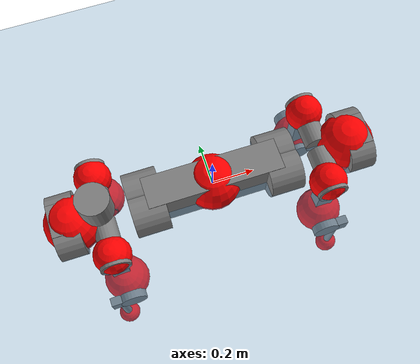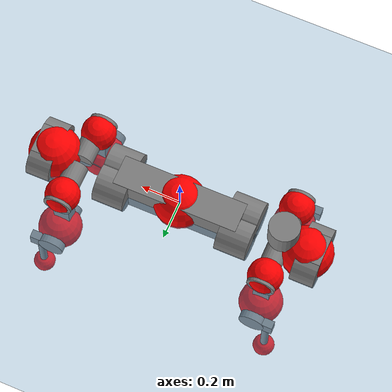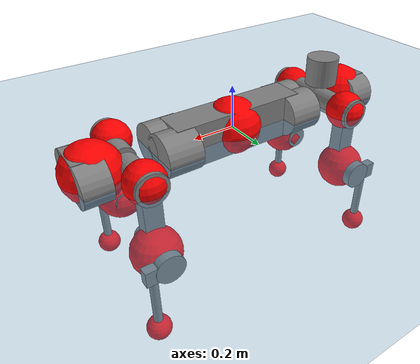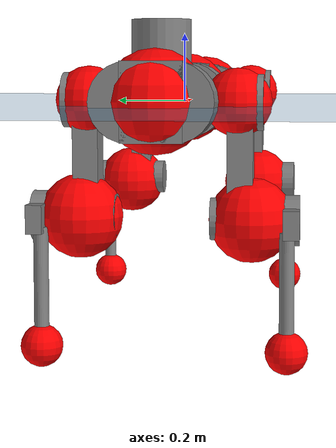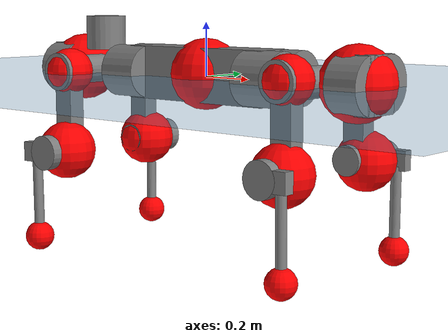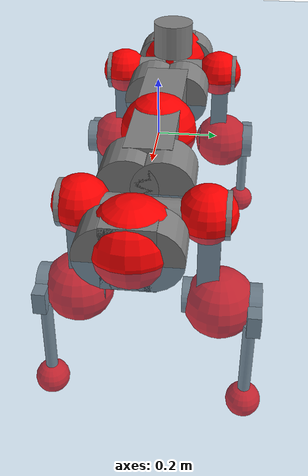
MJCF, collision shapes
<mujoco model="anymal_c">
  <compiler angle="radian" assetdir="assets" balanceinertia="true" inertiafromgeom="false"/>

  <option timestep="0.005" density="1.2" viscosity="2e-05"/>

  <size nkey="1"/>

  <visual>
    <quality shadowsize="8192"/>
    <map shadowclip="0.5"/>
  </visual>

  <default>
    <default class="/">
      <material specular="0" shininess="0.25"/>
      <geom contype="0" conaffinity="0" group="1" solref="-1000 -80"/>
      <site size="0.01 0.005 0.005" group="5"/>
      <general forcelimited="true" forcerange="-80 80" biastype="affine" gainprm="80" biasprm="0 -80 -2"/>
      <default class="anymal_c">
        <joint armature="0.01" damping="0.01" frictionloss="0.1"/>
        <default class="visual">
          <geom type="mesh" group="2"/>
          <default class="visual_zflip"/>
        </default>
        <default class="collision">
          <geom type="cylinder" group="3"/>
          <default class="foot">
            <geom size="0.03 0 0" type="sphere" condim="6" priority="1" friction="0.8 0.02 0.01" solimp="0.015 1 0.03"/>
          </default>
        </default>
      </default>
      <default class="reward_collision_sphere">
        <geom group="5" rgba="1 0 0 1"/>
      </default>
    </default>
  </default>

  <asset>
    <texture type="skybox" colorspace="auto" name="//unnamed_texture_0" builtin="gradient" rgb1="0.95 0.95 0.95" rgb2="0.95 0.95 0.95" width="100" height="600"/>
    <texture type="2d" colorspace="auto" name="texplane" builtin="checker" rgb1="0.345 0.575 0.748" rgb2="0.345 0.575 0.748" markrgb="1 1 1" width="512" height="512"/>
    <texture type="2d" colorspace="linear" name="base" file="base.png"/>
    <texture type="2d" colorspace="linear" name="top_shell" file="top_shell.png"/>
    <texture type="2d" colorspace="linear" name="bottom_shell" file="bottom_shell.png"/>
    <texture type="2d" colorspace="linear" name="remote" file="remote.png"/>
    <texture type="2d" colorspace="linear" name="hatch" file="hatch.png"/>
    <texture type="2d" colorspace="linear" name="handle" file="handle.png"/>
    <texture type="2d" colorspace="linear" name="face" file="face.png"/>
    <texture type="2d" colorspace="linear" name="battery" file="battery.png"/>
    <texture type="2d" colorspace="linear" name="lidar_cage" file="lidar_cage.png"/>
    <texture type="2d" colorspace="linear" name="depth_camera" file="depth_camera.png"/>
    <texture type="2d" colorspace="linear" name="wide_angle_camera" file="wide_angle_camera.png"/>
    <texture type="2d" colorspace="linear" name="lidar" file="lidar.png"/>
    <texture type="2d" colorspace="linear" name="drive" file="drive.png"/>
    <texture type="2d" colorspace="linear" name="hip_l" file="hip_l.png"/>
    <texture type="2d" colorspace="linear" name="shank_l" file="shank_l.png"/>
    <texture type="2d" colorspace="linear" name="foot" file="foot.png"/>
    <texture type="2d" colorspace="linear" name="thigh" file="thigh.png"/>
    <texture type="2d" colorspace="linear" name="shank_r" file="shank_r.png"/>
    <texture type="2d" colorspace="linear" name="hip_r" file="hip_r.png"/>
    <material name="MatPlane" class="/" texture="texplane" texuniform="true" texrepeat="2 2" specular="0.9" shininess="0.5"/>
    <material name="black_plastic" class="/" rgba="0.007 0.007 0.007 1"/>
    <material name="green" class="/" rgba="0.052 0.178 0.033 1"/>
    <material name="red" class="/" rgba="0.178 0.006 0.005 1"/>
    <material name="yellow" class="/" rgba="0.178 0.119 0.006 1"/>
    <material name="lwl" class="/" rgba="0.8 0.8 0.8 1"/>
    <material name="base" class="/" texture="base"/>
    <material name="top_shell" class="/" texture="top_shell"/>
    <material name="bottom_shell" class="/" texture="bottom_shell"/>
    <material name="hip_l" class="/" texture="hip_l"/>
    <material name="thigh" class="/" texture="thigh"/>
    <material name="shank_l" class="/" texture="shank_l"/>
    <material name="foot" class="/" texture="foot"/>
    <material name="hip_r" class="/" texture="hip_r"/>
    <material name="shank" class="/" texture="shank_r"/>
    <material name="hatch" class="/" texture="hatch"/>
    <material name="remote" class="/" texture="remote"/>
    <material name="handle" class="/" texture="handle"/>
    <material name="face" class="/" texture="face"/>
    <material name="depth_camera" class="/" texture="depth_camera"/>
    <material name="wide_angle_camera" class="/" texture="wide_angle_camera"/>
    <material name="battery" class="/" texture="battery"/>
    <material name="lidar_cage" class="/" texture="lidar_cage"/>
    <material name="lidar" class="/" texture="lidar"/>
    <material name="drive" class="/" texture="drive"/>
    <mesh name="base_0" class="/" file="base_0.obj"/>
    <mesh name="base_1" class="/" file="base_1.obj"/>
    <mesh name="base_2" class="/" file="base_2.obj"/>
    <mesh name="base_3" class="/" file="base_3.obj"/>
    <mesh name="base_4" class="/" file="base_4.obj"/>
    <mesh name="base_5" class="/" file="base_5.obj"/>
    <mesh name="top_shell" class="/" file="top_shell.obj"/>
    <mesh name="bottom_shell" class="/" file="bottom_shell.obj"/>
    <mesh name="remote" class="/" file="remote.obj"/>
    <mesh name="handle" class="/" file="handle.obj"/>
    <mesh name="face" class="/" file="face.obj"/>
    <mesh name="wide_angle_camera" class="/" file="wide_angle_camera.obj"/>
    <mesh name="depth_camera" class="/" file="depth_camera.obj"/>
    <mesh name="battery" class="/" file="battery.obj"/>
    <mesh name="lidar_cage" class="/" file="lidar_cage.obj"/>
    <mesh name="lidar" class="/" file="lidar.obj"/>
    <mesh name="drive" class="/" file="drive.obj"/>
    <mesh name="hip_l" class="/" file="hip_l.obj"/>
    <mesh name="thigh" class="/" file="thigh.obj"/>
    <mesh name="shank_l" class="/" file="shank_l.obj"/>
    <mesh name="foot" class="/" file="foot.obj"/>
    <mesh name="hip_r" class="/" file="hip_r.obj"/>
    <mesh name="hatch" class="/" file="hatch.obj"/>
    <mesh name="shank_r" class="/" file="shank_r.obj"/>
  </asset>

  <worldbody>
    <geom name="floor" class="/" size="100 100 0.125" type="plane" group="0" material="MatPlane"/>
    <light name="toplight_shadow" class="/" pos="0 0 5" dir="0.0990148 0.0990148 -0.990148" type="directional" ambient="0.04 0.04 0.04" diffuse="0.55 0.55 0.55" specular="0.12 0.12 0.12"/>
    <light name="toplight_fill" class="/" pos="0 0 5" dir="0.0990148 0.0990148 -0.990148" type="directional" castshadow="false" ambient="0.04 0.04 0.04" diffuse="0.3 0.3 0.3" specular="0.08 0.08 0.08"/>
    <body name="trunk" childclass="anymal_c" pos="0.000450271 0.000355869 0.0109736" quat="1 -0.000478878 0.000243845 6.22434e-05">
      <inertial pos="0.00171519 -0.0148206 0.0407451" quat="0.503389 0.499446 0.498685 0.498465" mass="26.6298" diaginertia="4.06381 0.190607 0.310707"/>
      <joint name="//unnamed_joint_0" type="free" armature="0" damping="0" frictionloss="0"/>
      <geom name="//unnamed_geom_1" class="visual" material="green" mesh="base_0"/>
      <geom name="//unnamed_geom_2" class="visual" material="yellow" mesh="base_1"/>
      <geom name="//unnamed_geom_3" class="visual" material="red" mesh="base_2"/>
      <geom name="//unnamed_geom_4" class="visual" material="black_plastic" mesh="base_3"/>
      <geom name="//unnamed_geom_5" class="visual" material="lwl" mesh="base_4"/>
      <geom name="//unnamed_geom_6" class="visual" material="base" mesh="base_5"/>
      <geom name="trunk_1" class="collision" size="0.319109 0.0770262 0.0990337" type="box"/>
      <geom name="trunk_2" class="collision" size="0.0990337 0.0797772" pos="0.320349 0.0544704 0" quat="0.707107 0 0.707107 0"/>
      <geom name="trunk_3" class="collision" size="0.0990337 0.0797772" pos="-0.320349 0.0544704 0" quat="0.707107 0 0.707107 0"/>
      <geom name="trunk_4" class="collision" size="0.0990337 0.0797772" pos="0.320349 -0.0544704 0" quat="0.707107 0 0.707107 0"/>
      <geom name="trunk_5" class="collision" size="0.0990337 0.0797772" pos="-0.320349 -0.0544704 0" quat="0.707107 0 0.707107 0"/>
      <geom name="//unnamed_geom_12" class="visual" material="top_shell" mesh="top_shell"/>
      <geom name="//unnamed_geom_13" class="visual" material="bottom_shell" mesh="bottom_shell"/>
      <geom name="//unnamed_geom_14" class="visual" material="remote" mesh="remote"/>
      <geom name="//unnamed_geom_15" class="visual" material="handle" mesh="handle"/>
      <geom name="//unnamed_geom_16" class="visual" pos="0.610504 0 0" quat="1 0 0 0" material="face" mesh="face"/>
      <geom name="trunk_6" class="collision" size="0.0605206 0.0770262 0.0990337" pos="0.691512 0 0" type="box"/>
      <geom name="//unnamed_geom_18" class="collision" size="0.0990337 0.0605206" pos="0.691512 0.0544704 0" quat="0.707107 0 0.707107 0"/>
      <geom name="//unnamed_geom_19" class="collision" size="0.0990337 0.0605206" pos="0.691512 -0.0544704 0" quat="0.707107 0 0.707107 0"/>
      <geom name="//unnamed_geom_20" class="visual" pos="0.679933 0 -0.0274501" quat="0.965926 0 0.258819 0" material="depth_camera" mesh="depth_camera"/>
      <geom name="//unnamed_geom_21" class="visual" pos="0.755582 0 0.0157201" material="wide_angle_camera" mesh="wide_angle_camera"/>
      <geom name="//unnamed_geom_22" class="visual_zflip" pos="-0.610504 0 0" quat="0 0 0 1" material="face" mesh="face"/>
      <geom name="trunk_7" class="collision" size="0.0605206 0.0770262 0.0990337" pos="-0.691512 0 0" quat="0 0 0 1" type="box"/>
      <geom name="//unnamed_geom_24" class="collision" size="0.0990337 0.0605206" pos="-0.691512 -0.0544704 0" quat="0 -0.707107 0 0.707107"/>
      <geom name="//unnamed_geom_25" class="collision" size="0.0990337 0.0605206" pos="-0.691512 0.0544704 0" quat="0 -0.707107 0 0.707107"/>
      <geom name="//unnamed_geom_26" class="visual" pos="-0.679933 0 -0.0274501" quat="0 -0.258819 0 0.965926" material="depth_camera" mesh="depth_camera"/>
      <geom name="//unnamed_geom_27" class="visual_zflip" pos="-0.755582 0 0.0157201" quat="0 0 0 1" material="wide_angle_camera" mesh="wide_angle_camera"/>
      <geom name="//unnamed_geom_28" class="visual" material="battery" mesh="battery"/>
      <geom name="//unnamed_geom_29" class="visual" pos="0 0.0503635 0.0337186" quat="0.683013 -0.183013 0.183013 0.683013" material="depth_camera" mesh="depth_camera"/>
      <geom name="//unnamed_geom_30" class="visual" pos="0 -0.0503635 0.0337186" quat="0.683013 0.183013 0.183013 -0.683013" material="depth_camera" mesh="depth_camera"/>
      <geom name="//unnamed_geom_31" class="visual" pos="-0.536124 0 0.0771828" quat="1 0 0 0" material="lidar_cage" mesh="lidar_cage"/>
      <geom name="trunk_8" class="collision" size="0.0770262 0.0660225" pos="-0.536124 0 0.140189"/>
      <geom name="//unnamed_geom_33" class="visual" pos="-0.536124 -0.000272937 0.149325" quat="0.707107 0 0 -0.707107" material="lidar" mesh="lidar"/>
      <geom name="//unnamed_geom_34" class="visual" pos="0.441714 0.0810241 -4.69129e-09" quat="0.258819 0.965926 0 0" material="drive" mesh="drive"/>
      <geom name="//unnamed_geom_35" class="visual" pos="0.441714 -0.0810241 4.69129e-09" quat="0.258819 -0.965926 0 0" material="drive" mesh="drive"/>
      <geom name="//unnamed_geom_36" class="visual" pos="-0.441714 0.0810241 4.69129e-09" quat="0 0 0.965926 -0.258819" material="drive" mesh="drive"/>
      <geom name="//unnamed_geom_37" class="visual" pos="-0.441714 -0.0810241 -4.69129e-09" quat="0 0 -0.965926 -0.258819" material="drive" mesh="drive"/>
      <geom name="//unnamed_geom_38" class="visual" pos="0.170853 0 0.0766577" quat="1 0 0 0" material="hatch" mesh="hatch"/>
      <geom name="//unnamed_geom_39" class="reward_collision_sphere" size="0.132045"/>
      <geom name="//unnamed_geom_40" class="reward_collision_sphere" size="0.132045" pos="0.662791 0 0"/>
      <geom name="//unnamed_geom_41" class="reward_collision_sphere" size="0.132045" pos="-0.662791 0 0"/>
      <site name="imu" pos="0.334423 0.0512372 0.0146975" size="0.0110037"/>
      <camera name="track" pos="0 -1.5563 0" quat="0.707107 0.707107 0 0" mode="trackcom"/>
      <camera name="ego_camera" pos="0.662791 0 -0.0420042" quat="-0.5 -0.5 0.5 0.5"/>
      <body name="LF_HIP" pos="0.443147 0.0907957 -0.00230633" quat="0.258161 0.966099 0.000110773 -0.00252334">
        <inertial pos="0.0966454 -0.0107161 -6.35602e-05" quat="-0.135077 0.698719 -0.133023 0.689819" mass="4.22718" diaginertia="0.0438309 0.00166659 0.00398163"/>
        <joint name="LF_HAA" pos="0 0 0" axis="1 1.91758e-05 0.000156353" range="-0.569248 0.501286" armature="0.0052311" damping="0" frictionloss="0.179874"/>
        <geom name="//unnamed_geom_42" class="visual" pos="0 -0.000275967 4.53274e-05" quat="0.258819 -0.965926 0 0" material="hip_l" mesh="hip_l"/>
        <geom name="//unnamed_geom_43" class="visual" pos="0.0882249 -0.0978528 -0.0585069" quat="0.183013 -0.683013 0.683013 0.183013" material="drive" mesh="drive"/>
        <geom name="//unnamed_geom_44" class="collision" size="0.0550187 0.0770262" pos="0.0882249 -0.0093065 -0.00725098" quat="-0.353553 -0.612372 0.612372 -0.353553"/>
        <body name="LF_THIGH" pos="0.0879108 -0.0534793 -0.0515628" quat="0.18265 -0.68326 0.682968 0.182618">
          <inertial pos="0.046694 7.24169e-05 -0.249196" quat="0.993934 -0.00515666 -0.07663 0.0787191" mass="4.48588" diaginertia="0.200852 0.0084907 0.00746644"/>
          <joint name="LF_HFE" pos="0 0 0" axis="0.999239 0.00731717 0.0383029" stiffness="0.0276951" range="-2.9361 2.98992" armature="0.00763913" damping="0.0126022" frictionloss="0.0960413"/>
          <geom name="//unnamed_geom_45" class="visual" pos="0.0138222 2.17806e-05 0" quat="0.707107 0 0 -0.707107" material="thigh" mesh="thigh"/>
          <geom name="//unnamed_geom_46" class="collision" size="0.0715244 0.044015" pos="0.0589148 0 0" quat="0.5 0.5 -0.5 -0.5"/>
          <geom name="//unnamed_geom_47" class="collision" size="0.0412641 0.0330112 0.155498" pos="0.0441861 0 -0.148395" quat="0.707107 0 0 -0.707107" type="box"/>
          <geom name="//unnamed_geom_48" class="visual" pos="0.147729 0 -0.29928" quat="1 0 0 0" material="drive" mesh="drive"/>
          <geom name="//unnamed_geom_49" class="collision" size="0.0550187 0.0770262" pos="0.0446279 0 -0.29928" quat="0.707107 0 0.707107 0"/>
          <geom name="//unnamed_geom_50" class="reward_collision_sphere" size="0.08803" pos="0.0368217 0 0"/>
          <body name="LF_SHANK" pos="0.155288 -0.010791 -0.310965" quat="0.999975 -0.00284459 0.00567277 0.00326738">
            <inertial pos="0.0100224 -0.0474204 -0.0851822" quat="0.992926 -0.116061 0.00119907 -0.0250427" mass="0.970393" diaginertia="0.068737 0.00271212 0.00159316"/>
            <joint name="LF_KFE" pos="0 0 0" axis="0.999667 0.0214039 0.0144265" range="-3.20077 3.21846" armature="0.015585" damping="0" frictionloss="0.170581"/>
            <geom name="//unnamed_geom_51" class="visual" pos="0.00450712 0.0240322 0" quat="0.707107 0 0 -0.707107" material="shank_l" mesh="shank_l"/>
            <geom name="LF_kfe_act" class="collision" size="0.0660225 0.0220075" pos="0.0294574 0 0" quat="0.5 0.5 -0.5 -0.5"/>
            <geom name="//unnamed_geom_53" class="collision" size="0.0632704 0.0371376 0.0209071" pos="0.0294574 -0.0447428 0" quat="0.5 0.5 -0.5 -0.5" type="box"/>
            <geom name="//unnamed_geom_54" class="visual" pos="0.0192199 -0.0606936 -0.354904" quat="0.382683 0 0 -0.92388" material="foot" mesh="foot"/>
            <geom name="LF_calf" class="collision" size="0.0192566 0.15543" pos="0.0192209 -0.0684382 -0.177452" quat="0.707107 0 0 -0.707107"/>
            <geom name="LF_foot" class="foot" size="0.0177837" pos="0.0192209 -0.0684382 -0.331277" quat="0.707107 0 0 -0.707107"/>
            <geom name="//unnamed_geom_57" class="reward_collision_sphere" size="0.110037" pos="-0.0736435 0 0"/>
            <geom name="//unnamed_geom_58" class="reward_collision_sphere" size="0.0550187" pos="0.0192209 -0.0684382 -0.331277"/>
            <site name="LF_foot" class="foot" pos="0.0192209 -0.0684382 -0.331277" quat="0.707107 0 0 -0.707107" size="0.0110037"/>
          </body>
        </body>
      </body>
      <body name="RF_HIP" pos="0.43548 -0.0715175 -0.000903164" quat="0.258252 -0.966058 0.00500554 -0.0036475">
        <inertial pos="0.0835307 0.00855393 -0.00497532" quat="0.135106 0.678884 0.12832 0.710209" mass="4.0252" diaginertia="0.0487688 0.00181552 0.00407034"/>
        <joint name="RF_HAA" pos="0 0 0" axis="0.999998 -0.00193814 -0.000585728" range="-0.727386 1.00348" armature="0.0114191" damping="0" frictionloss="0.165281"/>
        <geom name="//unnamed_geom_59" class="visual" pos="0 0.000275965 4.53273e-05" quat="0.258819 0.965926 0 0" material="hip_r" mesh="hip_r"/>
        <geom name="//unnamed_geom_60" class="visual" pos="0.0882249 0.0978528 -0.0585069" quat="0.183013 0.683013 0.683013 -0.183013" material="drive" mesh="drive"/>
        <geom name="//unnamed_geom_61" class="collision" size="0.0550187 0.0770262" pos="0.0882249 0.0093065 -0.00725098" quat="-0.353553 0.612372 0.612372 0.353553"/>
        <body name="RF_THIGH" pos="0.072619 0.0473768 -0.0418913" quat="0.181068 0.684637 0.681821 -0.183323">
          <inertial pos="0.0445824 0.00324923 -0.257712" quat="0.992732 -0.00571467 -0.0802602 0.0894936" mass="3.61686" diaginertia="0.197816 0.00747157 0.00405446"/>
          <joint name="RF_HFE" pos="0 0 0" axis="0.997359 0.0445101 -0.0574001" stiffness="0.0126099" range="-3.46262 3.42441" armature="0.0106234" damping="0.0625736" frictionloss="0.136268"/>
          <geom name="//unnamed_geom_62" class="visual" pos="0.0138222 2.17806e-05 0" quat="0.707107 0 0 -0.707107" material="thigh" mesh="thigh"/>
          <geom name="//unnamed_geom_63" class="collision" size="0.0715244 0.044015" pos="0.0589148 0 0" quat="0.5 0.5 0.5 0.5"/>
          <geom name="//unnamed_geom_64" class="collision" size="0.0412641 0.0330112 0.155498" pos="0.0441861 0 -0.148395" quat="0.707107 0 0 0.707107" type="box"/>
          <geom name="//unnamed_geom_65" class="visual" pos="0.147729 0 -0.29928" quat="1 0 0 0" material="drive" mesh="drive"/>
          <geom name="//unnamed_geom_66" class="collision" size="0.0550187 0.0770262" pos="0.0446279 0 -0.29928" quat="0.707107 0 0.707107 0"/>
          <geom name="//unnamed_geom_67" class="reward_collision_sphere" size="0.08803" pos="0.0368217 0 0"/>
          <body name="RF_SHANK" pos="0.133155 -0.0043779 -0.307835" quat="0.999998 -0.000308625 -0.00076076 -0.00187913">
            <inertial pos="0.0149987 0.05241 -0.10013" quat="0.992712 0.115753 -0.0282562 0.018052" mass="0.949319" diaginertia="0.0623656 0.00267583 0.00145008"/>
            <joint name="RF_KFE" pos="0 0 0" axis="0.996689 0.0585262 0.0564343" stiffness="0.0324081" range="-3.24944 3.39322" armature="0.0118947" damping="0" frictionloss="0.198935"/>
            <geom name="//unnamed_geom_68" class="visual" pos="0.00450709 -0.0240321 0" quat="0.707107 0 0 0.707107" material="shank" mesh="shank_r"/>
            <geom name="RF_kfe_act" class="collision" size="0.0660225 0.0220075" pos="0.0294574 0 0" quat="0.5 0.5 0.5 0.5"/>
            <geom name="//unnamed_geom_70" class="collision" size="0.0632704 0.0371376 0.0209071" pos="0.0294574 0.0447428 0" quat="0.5 0.5 0.5 0.5" type="box"/>
            <geom name="//unnamed_geom_71" class="visual" pos="0.019222 0.0606936 -0.354904" quat="0.382683 0 0 0.92388" material="foot" mesh="foot"/>
            <geom name="RF_calf" class="collision" size="0.0192566 0.15543" pos="0.0192209 0.0684382 -0.177452" quat="0.707107 0 0 0.707107"/>
            <geom name="RF_foot" class="foot" size="0.0274193" pos="0.0192209 0.0684382 -0.331277" quat="0.707107 0 0 0.707107"/>
            <geom name="//unnamed_geom_74" class="reward_collision_sphere" size="0.110037" pos="-0.0736435 0 0"/>
            <geom name="//unnamed_geom_75" class="reward_collision_sphere" size="0.0550187" pos="0.0192209 0.0684382 -0.331277"/>
            <site name="RF_foot" class="foot" pos="0.0192209 0.0684382 -0.331277" quat="0.707107 0 0 0.707107" size="0.0110037"/>
          </body>
        </body>
      </body>
      <body name="LH_HIP" pos="-0.437103 0.0697258 -0.00223767" quat="-0.00142617 -0.000144237 0.965942 -0.258753">
        <inertial pos="0.0919046 0.0247766 -0.0125026" quat="0.199533 0.634985 0.15072 0.730934" mass="4.47319" diaginertia="0.037453 0.00122582 0.00461082"/>
        <joint name="LH_HAA" pos="0 0 0" axis="0.998471 0.041938 0.0360034" stiffness="0.0577192" range="-0.58505 0.885301" armature="0.0113729" damping="0.0602804" frictionloss="0.0630201"/>
        <geom name="//unnamed_geom_76" class="visual" pos="0 0.000275965 4.53273e-05" quat="-0.258819 -0.965926 0 0" material="hip_r" mesh="hip_r"/>
        <geom name="//unnamed_geom_77" class="visual" pos="0.0882249 0.0978528 -0.0585069" quat="0.183013 0.683013 0.683013 -0.183013" material="drive" mesh="drive"/>
        <geom name="//unnamed_geom_78" class="collision" size="0.0550187 0.0770262" pos="0.0882249 0.0093065 -0.00725098" quat="-0.353553 0.612372 0.612372 0.353553"/>
        <body name="LH_THIGH" pos="0.0884008 0.0695523 -0.0449613" quat="0.184027 0.683799 0.683057 -0.178845">
          <inertial pos="0.0517212 0.0108578 -0.258212" quat="0.991554 -0.0293846 -0.0651261 0.10824" mass="3.87194" diaginertia="0.180394 0.00778218 0.00393066"/>
          <joint name="LH_HFE" pos="0 0 0" axis="0.999998 0.000297999 -0.00212552" range="-3.16209 3.14565" armature="0.0113952" damping="0.037135" frictionloss="0.114848"/>
          <geom name="//unnamed_geom_79" class="visual" pos="0.0138222 2.17806e-05 0" quat="0.707107 0 0 -0.707107" material="thigh" mesh="thigh"/>
          <geom name="//unnamed_geom_80" class="collision" size="0.0715244 0.044015" pos="0.0589148 0 0" quat="0.5 0.5 -0.5 -0.5"/>
          <geom name="//unnamed_geom_81" class="collision" size="0.0412641 0.0330112 0.155498" pos="0.0441861 0 -0.148395" quat="0.707107 0 0 -0.707107" type="box"/>
          <geom name="//unnamed_geom_82" class="visual" pos="0.147729 0 -0.29928" quat="1 0 0 0" material="drive" mesh="drive"/>
          <geom name="//unnamed_geom_83" class="collision" size="0.0550187 0.0770262" pos="0.0446279 0 -0.29928" quat="0.707107 0 0.707107 0"/>
          <geom name="//unnamed_geom_84" class="reward_collision_sphere" size="0.08803" pos="0.0368217 0 0"/>
          <body name="LH_SHANK" pos="0.136164 -0.000271523 -0.301509" quat="0.99998 0.00117129 -0.00221763 -0.00574242">
            <inertial pos="-0.0038009 0.0539392 -0.0741436" quat="0.992918 0.115963 -0.000519568 0.025828" mass="0.724238" diaginertia="0.0598095 0.00171777 0.000893473"/>
            <joint name="LH_KFE" pos="0 0 0" axis="0.998805 -0.0432641 0.0227526" range="-3.15999 3.47628" armature="0.011387" damping="0" frictionloss="0.0650133"/>
            <geom name="//unnamed_geom_85" class="visual" pos="0.00450709 -0.0240321 0" quat="-0.707107 0 0 -0.707107" material="shank" mesh="shank_r"/>
            <geom name="LH_kfe_act" class="collision" size="0.0660225 0.0220075" pos="0.0294574 0 0" quat="0.5 0.5 -0.5 -0.5"/>
            <geom name="//unnamed_geom_87" class="collision" size="0.0632704 0.0371376 0.0209071" pos="0.0294574 0.0447428 0" quat="0.5 0.5 -0.5 -0.5" type="box"/>
            <geom name="//unnamed_geom_88" class="visual" pos="0.019222 0.0606936 -0.354904" quat="-0.382683 0 0 -0.92388" material="foot" mesh="foot"/>
            <geom name="LH_calf" class="collision" size="0.0192566 0.15543" pos="0.0192209 0.0684382 -0.177452" quat="0.707107 0 0 -0.707107"/>
            <geom name="LH_foot" class="foot" size="0.051212" pos="0.0192209 0.0684382 -0.331277" quat="0.707107 0 0 -0.707107"/>
            <geom name="//unnamed_geom_91" class="reward_collision_sphere" size="0.110037" pos="-0.0736435 0 0"/>
            <geom name="//unnamed_geom_92" class="reward_collision_sphere" size="0.0550187" pos="0.0192209 0.0684382 -0.331277"/>
            <site name="LH_foot" class="foot" pos="0.0192209 0.0684382 -0.331277" quat="0.707107 0 0 -0.707107" size="0.0110037"/>
          </body>
        </body>
      </body>
      <body name="RH_HIP" pos="-0.441859 -0.0929384 -0.000130949" quat="-0.00153069 0.00644435 -0.965963 -0.258597">
        <inertial pos="0.0788904 -0.0201725 -0.00103343" quat="-0.20357 0.715012 -0.142585 0.653443" mass="4.45882" diaginertia="0.0401646 0.00174701 0.00468886"/>
        <joint name="RH_HAA" pos="0 0 0" axis="0.999496 0.0313803 0.00478795" stiffness="0.0278402" range="-0.459866 0.39244" armature="0.0190084" damping="0.0174473" frictionloss="0.0557181"/>
        <geom name="//unnamed_geom_93" class="visual" pos="0 -0.000275967 4.53274e-05" quat="-0.258819 0.965926 0 0" material="hip_l" mesh="hip_l"/>
        <geom name="//unnamed_geom_94" class="visual" pos="0.0882249 -0.0978528 -0.0585069" quat="-0.183013 0.683013 -0.683013 -0.183013" material="drive" mesh="drive"/>
        <geom name="//unnamed_geom_95" class="collision" size="0.0550187 0.0770262" pos="0.0882249 -0.0093065 -0.00725098" quat="0.353553 0.612372 -0.612372 0.353553"/>
        <body name="RH_THIGH" pos="0.0914205 -0.057139 -0.0291491" quat="-0.182806 0.683044 -0.683402 -0.181645">
          <inertial pos="0.0456503 -0.0163696 -0.267193" quat="0.996322 -0.0456812 -0.0489316 0.0534929" mass="4.893" diaginertia="0.257938 0.0103721 0.00663406"/>
          <joint name="RH_HFE" pos="0 0 0" axis="0.998727 0.0333191 -0.0378842" range="-3.28686 3.42714" armature="0.00131001" damping="0" frictionloss="0.0773408"/>
          <geom name="//unnamed_geom_96" class="visual" pos="0.0138222 2.17806e-05 0" quat="0.707107 0 0 -0.707107" material="thigh" mesh="thigh"/>
          <geom name="//unnamed_geom_97" class="collision" size="0.0715244 0.044015" pos="0.0589148 0 0" quat="0.5 0.5 0.5 0.5"/>
          <geom name="//unnamed_geom_98" class="collision" size="0.0412641 0.0330112 0.155498" pos="0.0441861 0 -0.148395" quat="0.707107 0 0 0.707107" type="box"/>
          <geom name="//unnamed_geom_99" class="visual" pos="0.147729 0 -0.29928" quat="1 0 0 0" material="drive" mesh="drive"/>
          <geom name="//unnamed_geom_100" class="collision" size="0.0550187 0.0770262" pos="0.0446279 0 -0.29928" quat="0.707107 0 0.707107 0"/>
          <geom name="//unnamed_geom_101" class="reward_collision_sphere" size="0.08803" pos="0.0368217 0 0"/>
          <body name="RH_SHANK" pos="0.145246 0.0119295 -0.302961" quat="0.999984 0.00504282 -0.00119059 0.00223151">
            <inertial pos="-0.000274626 -0.047276 -0.0850928" quat="0.992563 -0.0822752 -0.0420906 -0.0792335" mass="1.0172" diaginertia="0.0738438 0.00312519 0.00125511"/>
            <joint name="RH_KFE" pos="0 0 0" axis="0.997558 -0.0295462 -0.063292" range="-3.38258 2.86769" armature="0.0117549" damping="0.0119426" frictionloss="0.0910264"/>
            <geom name="//unnamed_geom_102" class="visual" pos="0.00450712 0.0240322 0" quat="0.707107 0 0 -0.707107" material="shank_l" mesh="shank_l"/>
            <geom name="RH_kfe_act" class="collision" size="0.0660225 0.0220075" pos="0.0294574 0 0" quat="0.5 0.5 0.5 0.5"/>
            <geom name="//unnamed_geom_104" class="collision" size="0.0632704 0.0371376 0.0209071" pos="0.0294574 -0.0447428 0" quat="0.5 0.5 0.5 0.5" type="box"/>
            <geom name="//unnamed_geom_105" class="visual" pos="0.0192199 -0.0606936 -0.354904" quat="0.382683 0 0 -0.92388" material="foot" mesh="foot"/>
            <geom name="RH_calf" class="collision" size="0.0192566 0.15543" pos="0.0192209 -0.0684382 -0.177452" quat="0.707107 0 0 0.707107"/>
            <geom name="RH_foot" class="foot" size="0.0530293" pos="0.0192209 -0.0684382 -0.331277" quat="0.707107 0 0 0.707107"/>
            <geom name="//unnamed_geom_108" class="reward_collision_sphere" size="0.110037" pos="-0.0736435 0 0"/>
            <geom name="//unnamed_geom_109" class="reward_collision_sphere" size="0.0550187" pos="0.0192209 -0.0684382 -0.331277"/>
            <site name="RH_foot" class="foot" pos="0.0192209 -0.0684382 -0.331277" quat="0.707107 0 0 0.707107" size="0.0110037"/>
          </body>
        </body>
      </body>
    </body>
  </worldbody>

  <contact>
    <pair class="/" geom1="floor" geom2="LF_foot" name="//unnamed_contact_0"/>
    <pair class="/" geom1="floor" geom2="RF_foot" name="//unnamed_contact_1"/>
    <pair class="/" geom1="floor" geom2="LH_foot" name="//unnamed_contact_2"/>
    <pair class="/" geom1="floor" geom2="RH_foot" name="//unnamed_contact_3"/>
  </contact>

  <actuator>
    <general name="LF_HAA" class="/" joint="LF_HAA" forcerange="-118.014 118.014" gainprm="56.1256" biasprm="0 -56.1256 -1.79036"/>
    <general name="LF_HFE" class="/" joint="LF_HFE" forcerange="-141.001 141.001" gainprm="56.1256" biasprm="0 -56.1256 -1.79036"/>
    <general name="LF_KFE" class="/" joint="LF_KFE" forcerange="-71.1011 71.1011" gainprm="56.1256" biasprm="0 -56.1256 -1.79036"/>
    <general name="RF_HAA" class="/" joint="RF_HAA" forcerange="-107.184 107.184" gainprm="56.1256" biasprm="0 -56.1256 -1.79036"/>
    <general name="RF_HFE" class="/" joint="RF_HFE" forcerange="-66.6393 66.6393" gainprm="56.1256" biasprm="0 -56.1256 -1.79036"/>
    <general name="RF_KFE" class="/" joint="RF_KFE" forcerange="-114.134 114.134" gainprm="56.1256" biasprm="0 -56.1256 -1.79036"/>
    <general name="LH_HAA" class="/" joint="LH_HAA" forcerange="-54.017 54.017" gainprm="56.1256" biasprm="0 -56.1256 -1.79036"/>
    <general name="LH_HFE" class="/" joint="LH_HFE" forcerange="-88.9079 88.9079" gainprm="56.1256" biasprm="0 -56.1256 -1.79036"/>
    <general name="LH_KFE" class="/" joint="LH_KFE" forcerange="-116.667 116.667" gainprm="56.1256" biasprm="0 -56.1256 -1.79036"/>
    <general name="RH_HAA" class="/" joint="RH_HAA" forcerange="-140.171 140.171" gainprm="56.1256" biasprm="0 -56.1256 -1.79036"/>
    <general name="RH_HFE" class="/" joint="RH_HFE" forcerange="-101.164 101.164" gainprm="56.1256" biasprm="0 -56.1256 -1.79036"/>
    <general name="RH_KFE" class="/" joint="RH_KFE" forcerange="-103.054 103.054" gainprm="56.1256" biasprm="0 -56.1256 -1.79036"/>
  </actuator>

  <sensor>
    <gyro site="imu" name="imu_angular_velocity"/>
    <velocimeter site="imu" name="imu_linear_velocity"/>
    <framelinvel objtype="site" objname="LF_foot" name="LF_foot_global_linear_velocity"/>
    <framelinvel objtype="site" objname="RF_foot" name="RF_foot_global_linear_velocity"/>
    <framelinvel objtype="site" objname="LH_foot" name="LH_foot_global_linear_velocity"/>
    <framelinvel objtype="site" objname="RH_foot" name="RH_foot_global_linear_velocity"/>
  </sensor>

  <keyframe>
    <key name="home" qpos="0 0 0.55 1 0 0 0 0 0.4 -0.8 0 -0.4 0.8 0 -0.4 0.8 0 0.4 -0.8"/>
  </keyframe>
</mujoco>
